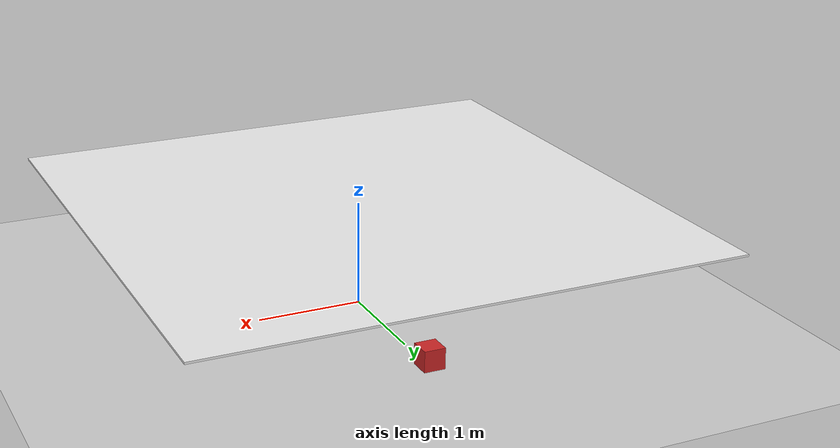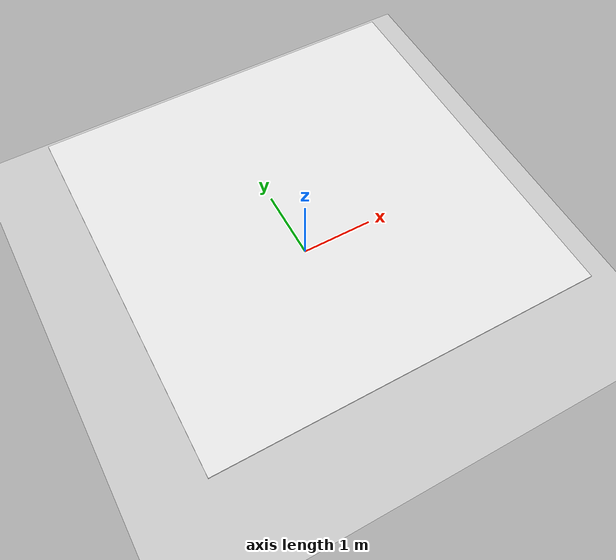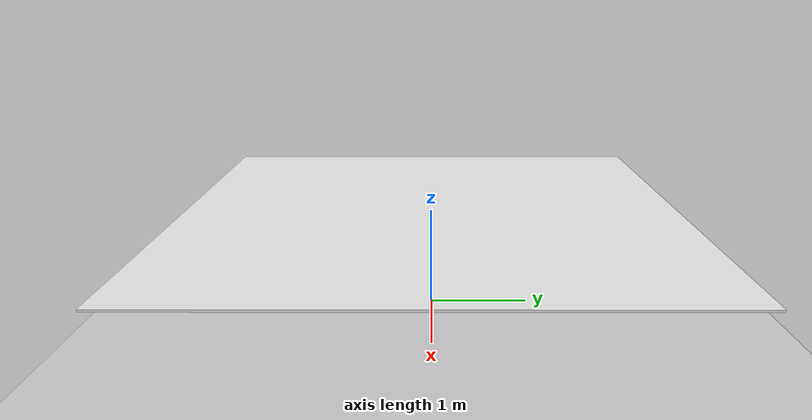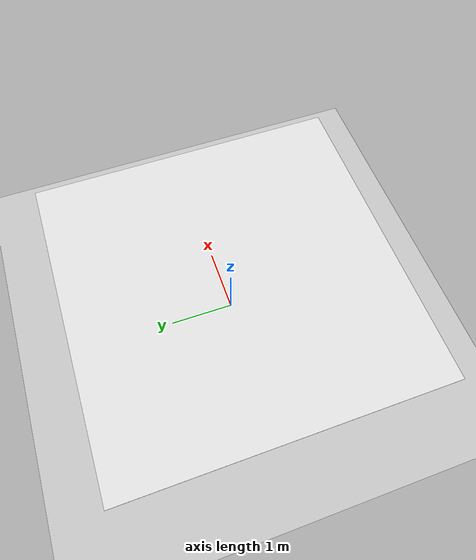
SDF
<?xml version="1.0"?>
<sdf version="1.5">
    <world name="default">
        <!-- A global light source -->
        <include>
            <uri>model://sun</uri>
        </include>
        <!-- A ground plane -->
        <include>
            <uri>model://ground_plane</uri>
        </include>

        <model name="ramp">
            <pose>0 0 1 0 0 0 </pose>
            <static>1</static>
            <link name="ramp_link">
                <pose>0 0 0 0 0 0</pose>
                <collision name="ramp_collision">
                    <pose>0 0 0 0 0 0</pose>
                    <geometry>
                        <box>
                            <size>5 5 0.02</size>
                        </box>
                    </geometry>
                    <max_contacts>50</max_contacts>
                    <surface>
                        <friction>
                            <ode />
                        </friction>
                    </surface>
                </collision>
                <visual name="ramp_visual">
                    <pose>0 0 0 0 0 0</pose>
                    <geometry>
                        <box>
                            <size>5 5 0.02</size>
                        </box>
                    </geometry>
                    <material>
                        <lighting>1</lighting>
                        <script>
                            <uri>file://media/materials/scripts/gazebo.material</uri>
                            <name>Gazebo/White</name>
                        </script>
                    </material>
                </visual>
                <gravity>0</gravity>
                <velocity_decay />
            </link>
        </model>

        <model name="cube_mu">
            <pose relative_to="ramp">0 1.5 0.11 0 0 0</pose>
            <link name="cube_mu_link">
                <pose>0 0 0 0 0 0</pose>
                <inertial>
                    <pose>0 0 0 0 0 0</pose>
                    <mass>1</mass>
                    <inertia>
                        <ixx>0.03333333333333333</ixx>
                        <ixy>0</ixy>
                        <ixz>0</ixz>
                        <iyy>0.03333333333333333</iyy>
                        <iyz>0</iyz>
                        <izz>0.03333333333333333</izz>
                    </inertia>
                </inertial>
                <collision name="cube_mu_collision">
                    <pose relative_to="cube_mu_link">0 0 0 0 0 0</pose>
                    <geometry>
                        <box>
                            <size>0.2 0.2 0.2</size>
                        </box>
                    </geometry>
                    <surface>

                        <friction>
                            <ode>
                                <mu>1</mu>
                                <mu2>0</mu2>
                            </ode>
                        </friction>
                    </surface>
                </collision>
                <visual name="cube_mu_visual">
                    <pose>0 0 0 0 0 0</pose>
                    <geometry>
                        <box>
                            <size>0.2 0.2 0.2</size>
                        </box>
                    </geometry>
                    <material>
                        <lighting>1</lighting>
                        <script>
                            <uri>file://media/materials/scripts/gazebo.material</uri>
                            <name>Gazebo/Red</name>
                        </script>
                    </material>
                </visual>
                <gravity>1</gravity>
                <velocity_decay />
            </link>
        </model>

        <model name="cube_mu_10">
            <pose relative_to="ramp">0 -1.5 0.11 0 0 0</pose>
            <link name="cube_mu10_link">
                <pose>0 0 0 0 0 0</pose>
                <inertial>
                    <pose>0 0 0 0 0 0</pose>
                    <mass>10</mass>
                    <inertia>
                        <ixx>0.066667</ixx>
                        <ixy>0</ixy>
                        <ixz>0</ixz>
                        <iyy>0.066667</iyy>
                        <iyz>0</iyz>
                        <izz>0.066667</izz>
                    </inertia>
                </inertial>
                <collision name="cube_mu10_collision">
                    <pose relative_to="cube_mu10_link">0 0 0 0 0 0</pose>
                    <geometry>
                        <box>
                            <size>0.2 0.2 0.2</size>
                        </box>
                    </geometry>
                    <surface>

                        <friction>
                            <ode>
                                <mu>1</mu>
                                <mu2>0</mu2>
                            </ode>
                        </friction>
                    </surface>
                </collision>
                <visual name="cube_mu10_visual">
                    <pose>0 0 0 0 0 0</pose>
                    <geometry>
                        <box>
                            <size>0.2 0.2 0.2</size>
                        </box>
                    </geometry>
                    <material>
                        <lighting>1</lighting>
                        <script>
                            <uri>file://media/materials/scripts/gazebo.material</uri>
                            <name>Gazebo/Green</name>
                        </script>
                    </material>
                </visual>
                <gravity>1</gravity>
                <velocity_decay />
            </link>
        </model>
    </world>
</sdf>
